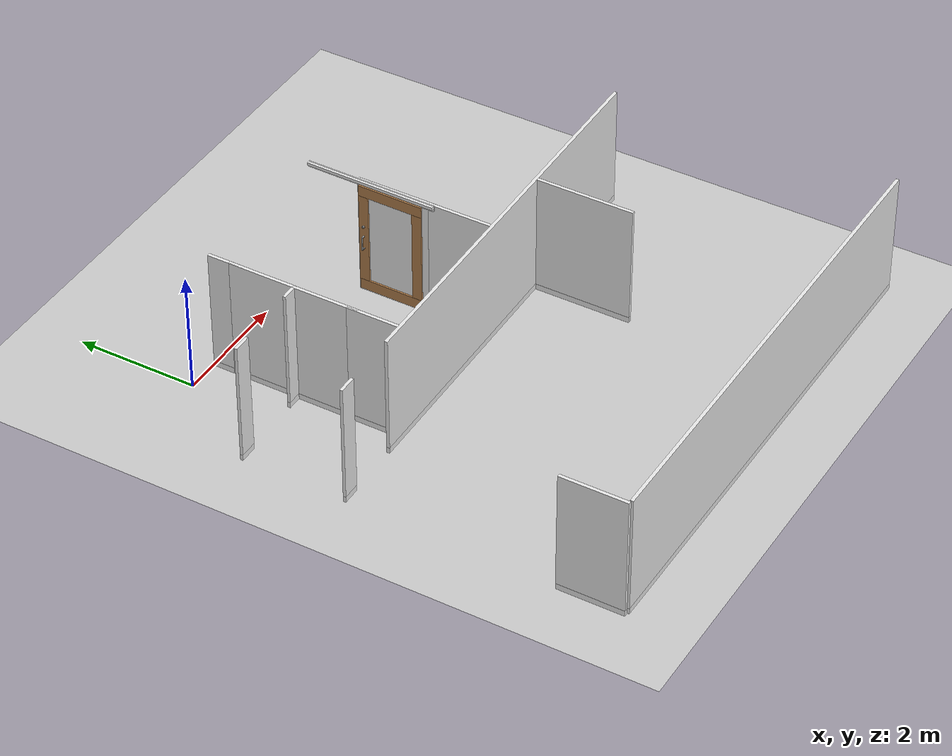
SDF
<sdf version="1.6">
 <world name="default">
  <model name="ground_plane">
   <static>1</static>
   <link name="link">
    <collision name="collision">
     <geometry><plane><normal>0 0 1</normal><size>100 100</size></plane></geometry>
     <surface><friction><ode><mu>100</mu><mu2>50</mu2></ode></friction></surface>
    </collision>
    <visual name="visual">
     <cast_shadows>0</cast_shadows>
     <geometry><plane><normal>0 0 1</normal><size>100 100</size></plane></geometry>
     <material>
      <script><uri>file://media/materials/scripts/gazebo.material</uri><name>Gazebo/Grey</name></script>
     </material>
    </visual>
   </link>
  </model>
  <model name="slim_wall_0_clone">
   <link name="link">
    <pose>-1.21711 0.435553 0 0 -0 0</pose>
    <inertial>
     <mass>12.4167</mass>
     <inertia><ixx>0</ixx><ixy>0</ixy><ixz>0</ixz><iyy>0</iyy><iyz>0</iyz><izz>0</izz></inertia>
    </inertial>
    <velocity_decay><linear>0</linear><angular>0</angular></velocity_decay>
    <visual name="bottom_frame">
     <pose>0 0 0.05 0 -0 0</pose>
     <geometry><box><size>0.048855 0.300624 0.1</size></box></geometry>
     <material>
      <script><uri>model://base_materials/color/scripts</uri><name>hsr_color/white</name></script>
      <ambient>1 1 1 1</ambient>
      <diffuse>0.5 0.5 0.5 1</diffuse>
      <specular>0 0 0 1</specular>
      <emissive>0 0 0 1</emissive>
     </material>
    </visual>
    <visual name="wall">
     <pose>0 0 1.095 0 -0 0</pose>
     <geometry><box><size>0.048855 0.300624 1.99</size></box></geometry>
     <material>
      <script>
       <uri>model://base_materials/wall/scripts</uri>
       <uri>model://base_materials/wall/textures</uri>
       <name>wall/white_noise</name>
      </script>
      <ambient>1 1 1 1</ambient>
      <diffuse>0.5 0.5 0.5 1</diffuse>
      <specular>0 0 0 1</specular>
      <emissive>0 0 0 1</emissive>
     </material>
    </visual>
    <collision name="collision_bottom_frame">
     <pose>0 0 0.05 0 -0 0</pose>
     <geometry><box><size>0.048855 0.300624 0.1</size></box></geometry>
     <surface>
      <friction>
       <ode><mu>1</mu><mu2>1</mu2><fdir1>0 0 0</fdir1><slip1>0</slip1><slip2>0</slip2></ode>
       <torsional>
        <coefficient>1</coefficient>
        <patch_radius>0</patch_radius>
        <surface_radius>0</surface_radius>
        <use_patch_radius>1</use_patch_radius>
        <ode><slip>0</slip></ode>
       </torsional>
      </friction>
      <bounce><restitution_coefficient>0</restitution_coefficient><threshold>1e+06</threshold></bounce>
      <contact>
       <collide_without_contact>0</collide_without_contact>
       <collide_without_contact_bitmask>1</collide_without_contact_bitmask>
       <collide_bitmask>1</collide_bitmask>
       <ode>
        <soft_cfm>0</soft_cfm>
        <soft_erp>0.2</soft_erp>
        <kp>1e+13</kp>
        <kd>1</kd>
        <max_vel>0.01</max_vel>
        <min_depth>0</min_depth>
       </ode>
       <bullet>
        <split_impulse>1</split_impulse>
        <split_impulse_penetration_threshold>-0.01</split_impulse_penetration_threshold>
        <soft_cfm>0</soft_cfm>
        <soft_erp>0.2</soft_erp>
        <kp>1e+13</kp>
        <kd>1</kd>
       </bullet>
      </contact>
     </surface>
    </collision>
    <collision name="collision_wall">
     <pose>0 0 1.095 0 -0 0</pose>
     <geometry><box><size>0.048855 0.300624 1.99</size></box></geometry>
     <surface>
      <friction>
       <ode><mu>1</mu><mu2>1</mu2><fdir1>0 0 0</fdir1><slip1>0</slip1><slip2>0</slip2></ode>
       <torsional>
        <coefficient>1</coefficient>
        <patch_radius>0</patch_radius>
        <surface_radius>0</surface_radius>
        <use_patch_radius>1</use_patch_radius>
        <ode><slip>0</slip></ode>
       </torsional>
      </friction>
      <bounce><restitution_coefficient>0</restitution_coefficient><threshold>1e+06</threshold></bounce>
      <contact>
       <collide_without_contact>0</collide_without_contact>
       <collide_without_contact_bitmask>1</collide_without_contact_bitmask>
       <collide_bitmask>1</collide_bitmask>
       <ode>
        <soft_cfm>0</soft_cfm>
        <soft_erp>0.2</soft_erp>
        <kp>1e+13</kp>
        <kd>1</kd>
        <max_vel>0.01</max_vel>
        <min_depth>0</min_depth>
       </ode>
       <bullet>
        <split_impulse>1</split_impulse>
        <split_impulse_penetration_threshold>-0.01</split_impulse_penetration_threshold>
        <soft_cfm>0</soft_cfm>
        <soft_erp>0.2</soft_erp>
        <kp>1e+13</kp>
        <kd>1</kd>
       </bullet>
      </contact>
     </surface>
    </collision>
   </link>
   <static>1</static>
   <pose>-0.462537 -2.07643 0 0 -0 1.58512</pose>
  </model>
  <model name="slim_wall_0_clone_0">
   <link name="link">
    <pose>-1.21711 0.435553 0 0 -0 0</pose>
    <inertial>
     <mass>12.4167</mass>
     <inertia><ixx>0</ixx><ixy>0</ixy><ixz>0</ixz><iyy>0</iyy><iyz>0</iyz><izz>0</izz></inertia>
    </inertial>
    <velocity_decay><linear>0</linear><angular>0</angular></velocity_decay>
    <visual name="bottom_frame">
     <pose>0 0 0.05 0 -0 0</pose>
     <geometry><box><size>0.048855 0.300624 0.1</size></box></geometry>
     <material>
      <script><uri>model://base_materials/color/scripts</uri><name>hsr_color/white</name></script>
      <ambient>1 1 1 1</ambient>
      <diffuse>0.5 0.5 0.5 1</diffuse>
      <specular>0 0 0 1</specular>
      <emissive>0 0 0 1</emissive>
     </material>
    </visual>
    <visual name="wall">
     <pose>0 0 1.095 0 -0 0</pose>
     <geometry><box><size>0.048855 0.300624 1.99</size></box></geometry>
     <material>
      <script>
       <uri>model://base_materials/wall/scripts</uri>
       <uri>model://base_materials/wall/textures</uri>
       <name>wall/white_noise</name>
      </script>
      <ambient>1 1 1 1</ambient>
      <diffuse>0.5 0.5 0.5 1</diffuse>
      <specular>0 0 0 1</specular>
      <emissive>0 0 0 1</emissive>
     </material>
    </visual>
    <collision name="collision_bottom_frame">
     <pose>0 0 0.05 0 -0 0</pose>
     <geometry><box><size>0.048855 0.300624 0.1</size></box></geometry>
     <surface>
      <friction>
       <ode><mu>1</mu><mu2>1</mu2><fdir1>0 0 0</fdir1><slip1>0</slip1><slip2>0</slip2></ode>
       <torsional>
        <coefficient>1</coefficient>
        <patch_radius>0</patch_radius>
        <surface_radius>0</surface_radius>
        <use_patch_radius>1</use_patch_radius>
        <ode><slip>0</slip></ode>
       </torsional>
      </friction>
      <bounce><restitution_coefficient>0</restitution_coefficient><threshold>1e+06</threshold></bounce>
      <contact>
       <collide_without_contact>0</collide_without_contact>
       <collide_without_contact_bitmask>1</collide_without_contact_bitmask>
       <collide_bitmask>1</collide_bitmask>
       <ode>
        <soft_cfm>0</soft_cfm>
        <soft_erp>0.2</soft_erp>
        <kp>1e+13</kp>
        <kd>1</kd>
        <max_vel>0.01</max_vel>
        <min_depth>0</min_depth>
       </ode>
       <bullet>
        <split_impulse>1</split_impulse>
        <split_impulse_penetration_threshold>-0.01</split_impulse_penetration_threshold>
        <soft_cfm>0</soft_cfm>
        <soft_erp>0.2</soft_erp>
        <kp>1e+13</kp>
        <kd>1</kd>
       </bullet>
      </contact>
     </surface>
    </collision>
    <collision name="collision_wall">
     <pose>0 0 1.095 0 -0 0</pose>
     <geometry><box><size>0.048855 0.300624 1.99</size></box></geometry>
     <surface>
      <friction>
       <ode><mu>1</mu><mu2>1</mu2><fdir1>0 0 0</fdir1><slip1>0</slip1><slip2>0</slip2></ode>
       <torsional>
        <coefficient>1</coefficient>
        <patch_radius>0</patch_radius>
        <surface_radius>0</surface_radius>
        <use_patch_radius>1</use_patch_radius>
        <ode><slip>0</slip></ode>
       </torsional>
      </friction>
      <bounce><restitution_coefficient>0</restitution_coefficient><threshold>1e+06</threshold></bounce>
      <contact>
       <collide_without_contact>0</collide_without_contact>
       <collide_without_contact_bitmask>1</collide_without_contact_bitmask>
       <collide_bitmask>1</collide_bitmask>
       <ode>
        <soft_cfm>0</soft_cfm>
        <soft_erp>0.2</soft_erp>
        <kp>1e+13</kp>
        <kd>1</kd>
        <max_vel>0.01</max_vel>
        <min_depth>0</min_depth>
       </ode>
       <bullet>
        <split_impulse>1</split_impulse>
        <split_impulse_penetration_threshold>-0.01</split_impulse_penetration_threshold>
        <soft_cfm>0</soft_cfm>
        <soft_erp>0.2</soft_erp>
        <kp>1e+13</kp>
        <kd>1</kd>
       </bullet>
      </contact>
     </surface>
    </collision>
   </link>
   <static>1</static>
   <pose>-0.45174 -0.316156 0 0 -0 1.58512</pose>
  </model>
  <model name="slim_wall_0_clone_2">
   <link name="link">
    <pose>-1.21711 0.435553 0 0 -0 0</pose>
    <inertial>
     <mass>12.4167</mass>
     <inertia><ixx>0</ixx><ixy>0</ixy><ixz>0</ixz><iyy>0</iyy><iyz>0</iyz><izz>0</izz></inertia>
    </inertial>
    <velocity_decay><linear>0</linear><angular>0</angular></velocity_decay>
    <visual name="bottom_frame">
     <pose>0 0 0.05 0 -0 0</pose>
     <geometry><box><size>0.048855 0.300624 0.1</size></box></geometry>
     <material>
      <script><uri>model://base_materials/color/scripts</uri><name>hsr_color/white</name></script>
      <ambient>1 1 1 1</ambient>
      <diffuse>0.5 0.5 0.5 1</diffuse>
      <specular>0 0 0 1</specular>
      <emissive>0 0 0 1</emissive>
     </material>
    </visual>
    <visual name="wall">
     <pose>0 0 1.095 0 -0 0</pose>
     <geometry><box><size>0.048855 0.300624 1.99</size></box></geometry>
     <material>
      <script>
       <uri>model://base_materials/wall/scripts</uri>
       <uri>model://base_materials/wall/textures</uri>
       <name>wall/white_noise</name>
      </script>
      <ambient>1 1 1 1</ambient>
      <diffuse>0.5 0.5 0.5 1</diffuse>
      <specular>0 0 0 1</specular>
      <emissive>0 0 0 1</emissive>
     </material>
    </visual>
    <collision name="collision_bottom_frame">
     <pose>0 0 0.05 0 -0 0</pose>
     <geometry><box><size>0.048855 0.300624 0.1</size></box></geometry>
     <surface>
      <friction>
       <ode><mu>1</mu><mu2>1</mu2><fdir1>0 0 0</fdir1><slip1>0</slip1><slip2>0</slip2></ode>
       <torsional>
        <coefficient>1</coefficient>
        <patch_radius>0</patch_radius>
        <surface_radius>0</surface_radius>
        <use_patch_radius>1</use_patch_radius>
        <ode><slip>0</slip></ode>
       </torsional>
      </friction>
      <bounce><restitution_coefficient>0</restitution_coefficient><threshold>1e+06</threshold></bounce>
      <contact>
       <collide_without_contact>0</collide_without_contact>
       <collide_without_contact_bitmask>1</collide_without_contact_bitmask>
       <collide_bitmask>1</collide_bitmask>
       <ode>
        <soft_cfm>0</soft_cfm>
        <soft_erp>0.2</soft_erp>
        <kp>1e+13</kp>
        <kd>1</kd>
        <max_vel>0.01</max_vel>
        <min_depth>0</min_depth>
       </ode>
       <bullet>
        <split_impulse>1</split_impulse>
        <split_impulse_penetration_threshold>-0.01</split_impulse_penetration_threshold>
        <soft_cfm>0</soft_cfm>
        <soft_erp>0.2</soft_erp>
        <kp>1e+13</kp>
        <kd>1</kd>
       </bullet>
      </contact>
     </surface>
    </collision>
    <collision name="collision_wall">
     <pose>0 0 1.095 0 -0 0</pose>
     <geometry><box><size>0.048855 0.300624 1.99</size></box></geometry>
     <surface>
      <friction>
       <ode><mu>1</mu><mu2>1</mu2><fdir1>0 0 0</fdir1><slip1>0</slip1><slip2>0</slip2></ode>
       <torsional>
        <coefficient>1</coefficient>
        <patch_radius>0</patch_radius>
        <surface_radius>0</surface_radius>
        <use_patch_radius>1</use_patch_radius>
        <ode><slip>0</slip></ode>
       </torsional>
      </friction>
      <bounce><restitution_coefficient>0</restitution_coefficient><threshold>1e+06</threshold></bounce>
      <contact>
       <collide_without_contact>0</collide_without_contact>
       <collide_without_contact_bitmask>1</collide_without_contact_bitmask>
       <collide_bitmask>1</collide_bitmask>
       <ode>
        <soft_cfm>0</soft_cfm>
        <soft_erp>0.2</soft_erp>
        <kp>1e+13</kp>
        <kd>1</kd>
        <max_vel>0.01</max_vel>
        <min_depth>0</min_depth>
       </ode>
       <bullet>
        <split_impulse>1</split_impulse>
        <split_impulse_penetration_threshold>-0.01</split_impulse_penetration_threshold>
        <soft_cfm>0</soft_cfm>
        <soft_erp>0.2</soft_erp>
        <kp>1e+13</kp>
        <kd>1</kd>
       </bullet>
      </contact>
     </surface>
    </collision>
   </link>
   <static>1</static>
   <pose>0.874173 -0.274906 0 0 -0 1.58512</pose>
  </model>
  <model name="full_wall_55_1100_2090_0">
   <link name="link">
    <inertial>
     <mass>50</mass>
     <inertia><ixx>1</ixx><ixy>0</ixy><ixz>0</ixz><iyy>1</iyy><iyz>0</iyz><izz>1</izz></inertia>
    </inertial>
    <visual name="bottom_frame">
     <pose>0 0 0.05 0 -0 0</pose>
     <geometry><box><size>0.055 1.1 0.1</size></box></geometry>
     <material>
      <script><uri>model://base_materials/color/scripts</uri><name>hsr_color/white</name></script>
     </material>
    </visual>
    <collision name="collision_bottom_frame">
     <pose>0 0 0.05 0 -0 0</pose>
     <geometry><box><size>0.055 1.1 0.1</size></box></geometry>
    </collision>
    <visual name="wall">
     <pose>0 0 1.095 0 -0 0</pose>
     <geometry><box><size>0.055 1.1 1.99</size></box></geometry>
     <material>
      <script>
       <uri>model://base_materials/wall/scripts</uri>
       <uri>model://base_materials/wall/textures</uri>
       <name>wall/white_noise</name>
      </script>
     </material>
    </visual>
    <collision name="collision_wall">
     <pose>0 0 1.095 0 -0 0</pose>
     <geometry><box><size>0.055 1.1 1.99</size></box></geometry>
    </collision>
    <velocity_decay><linear>0</linear><angular>0</angular></velocity_decay>
   </link>
   <static>1</static>
   <pose>0.574353 -2.02901 0 0 -0 0</pose>
  </model>
  <model name="full_wall_55_1100_2090_1">
   <link name="link">
    <inertial>
     <mass>50</mass>
     <inertia><ixx>1</ixx><ixy>0</ixy><ixz>0</ixz><iyy>1</iyy><iyz>0</iyz><izz>1</izz></inertia>
    </inertial>
    <visual name="bottom_frame">
     <pose>0 0 0.05 0 -0 0</pose>
     <geometry><box><size>0.055 1.1 0.1</size></box></geometry>
     <material>
      <script><uri>model://base_materials/color/scripts</uri><name>hsr_color/white</name></script>
     </material>
    </visual>
    <collision name="collision_bottom_frame">
     <pose>0 0 0.05 0 -0 0</pose>
     <geometry><box><size>0.055 1.1 0.1</size></box></geometry>
    </collision>
    <visual name="wall">
     <pose>0 0 1.095 0 -0 0</pose>
     <geometry><box><size>0.055 1.1 1.99</size></box></geometry>
     <material>
      <script>
       <uri>model://base_materials/wall/scripts</uri>
       <uri>model://base_materials/wall/textures</uri>
       <name>wall/white_noise</name>
      </script>
     </material>
    </visual>
    <collision name="collision_wall">
     <pose>0 0 1.095 0 -0 0</pose>
     <geometry><box><size>0.055 1.1 1.99</size></box></geometry>
    </collision>
    <velocity_decay><linear>0</linear><angular>0</angular></velocity_decay>
   </link>
   <static>1</static>
   <pose>0.578006 -0.931267 0 0 -0 0</pose>
  </model>
  <model name="full_wall_55_600_2090">
   <link name="link">
    <inertial>
     <mass>50</mass>
     <inertia><ixx>1</ixx><ixy>0</ixy><ixz>0</ixz><iyy>1</iyy><iyz>0</iyz><izz>1</izz></inertia>
    </inertial>
    <visual name="bottom_frame">
     <pose>0 0 0.05 0 -0 0</pose>
     <geometry><box><size>0.055 0.6 0.1</size></box></geometry>
     <material>
      <script><uri>model://base_materials/color/scripts</uri><name>hsr_color/white</name></script>
     </material>
    </visual>
    <collision name="collision_bottom_frame">
     <pose>0 0 0.05 0 -0 0</pose>
     <geometry><box><size>0.055 0.6 0.1</size></box></geometry>
    </collision>
    <visual name="wall">
     <pose>0 0 1.095 0 -0 0</pose>
     <geometry><box><size>0.055 0.6 1.99</size></box></geometry>
     <material>
      <script>
       <uri>model://base_materials/wall/scripts</uri>
       <uri>model://base_materials/wall/textures</uri>
       <name>wall/white_noise</name>
      </script>
     </material>
    </visual>
    <collision name="collision_wall">
     <pose>0 0 1.095 0 -0 0</pose>
     <geometry><box><size>0.055 0.6 1.99</size></box></geometry>
    </collision>
    <velocity_decay><linear>0</linear><angular>0</angular></velocity_decay>
   </link>
   <static>1</static>
   <pose>0.5806 -0.313776 0 0 -0 0</pose>
  </model>
  <model name="full_wall_55_900_2090_0">
   <link name="link">
    <inertial>
     <mass>50</mass>
     <inertia><ixx>1</ixx><ixy>0</ixy><ixz>0</ixz><iyy>1</iyy><iyz>0</iyz><izz>1</izz></inertia>
    </inertial>
    <visual name="bottom_frame">
     <pose>0 0 0.05 0 -0 0</pose>
     <geometry><box><size>0.055 0.9 0.1</size></box></geometry>
     <material>
      <script><uri>model://base_materials/color/scripts</uri><name>hsr_color/white</name></script>
     </material>
    </visual>
    <collision name="collision_bottom_frame">
     <pose>0 0 0.05 0 -0 0</pose>
     <geometry><box><size>0.055 0.9 0.1</size></box></geometry>
    </collision>
    <visual name="wall">
     <pose>0 0 1.095 0 -0 0</pose>
     <geometry><box><size>0.055 0.9 1.99</size></box></geometry>
     <material>
      <script>
       <uri>model://base_materials/wall/scripts</uri>
       <uri>model://base_materials/wall/textures</uri>
       <name>wall/white_noise</name>
      </script>
     </material>
    </visual>
    <collision name="collision_wall">
     <pose>0 0 1.095 0 -0 0</pose>
     <geometry><box><size>0.055 0.9 1.99</size></box></geometry>
    </collision>
    <velocity_decay><linear>0</linear><angular>0</angular></velocity_decay>
   </link>
   <static>1</static>
   <pose>0.573697 -2.84416 0 0 -0 0</pose>
  </model>
  <model name="full_wall_55_1100_2090_2">
   <link name="link">
    <inertial>
     <mass>50</mass>
     <inertia><ixx>1</ixx><ixy>0</ixy><ixz>0</ixz><iyy>1</iyy><iyz>0</iyz><izz>1</izz></inertia>
    </inertial>
    <visual name="bottom_frame">
     <pose>0 0 0.05 0 -0 0</pose>
     <geometry><box><size>0.055 1.1 0.1</size></box></geometry>
     <material>
      <script><uri>model://base_materials/color/scripts</uri><name>hsr_color/white</name></script>
     </material>
    </visual>
    <collision name="collision_bottom_frame">
     <pose>0 0 0.05 0 -0 0</pose>
     <geometry><box><size>0.055 1.1 0.1</size></box></geometry>
    </collision>
    <visual name="wall">
     <pose>0 0 1.095 0 -0 0</pose>
     <geometry><box><size>0.055 1.1 1.99</size></box></geometry>
     <material>
      <script>
       <uri>model://base_materials/wall/scripts</uri>
       <uri>model://base_materials/wall/textures</uri>
       <name>wall/white_noise</name>
      </script>
     </material>
    </visual>
    <collision name="collision_wall">
     <pose>0 0 1.095 0 -0 0</pose>
     <geometry><box><size>0.055 1.1 1.99</size></box></geometry>
    </collision>
    <velocity_decay><linear>0</linear><angular>0</angular></velocity_decay>
   </link>
   <static>1</static>
   <pose>3.27026 -1.45916 -0.016667 0 -0 2e-06</pose>
  </model>
  <model name="full_wall_55_1100_2090_2_clone">
   <link name="link">
    <inertial>
     <mass>50</mass>
     <inertia><ixx>1</ixx><ixy>0</ixy><ixz>0</ixz><iyy>1</iyy><iyz>0</iyz><izz>1</izz></inertia>
    </inertial>
    <visual name="bottom_frame">
     <pose>0 0 0.05 0 -0 0</pose>
     <geometry><box><size>0.055 1.1 0.1</size></box></geometry>
     <material>
      <script><uri>model://base_materials/color/scripts</uri><name>hsr_color/white</name></script>
     </material>
    </visual>
    <collision name="collision_bottom_frame">
     <pose>0 0 0.05 0 -0 0</pose>
     <geometry><box><size>0.055 1.1 0.1</size></box></geometry>
    </collision>
    <visual name="wall">
     <pose>0 0 1.095 0 -0 0</pose>
     <geometry><box><size>0.055 1.1 1.99</size></box></geometry>
     <material>
      <script>
       <uri>model://base_materials/wall/scripts</uri>
       <uri>model://base_materials/wall/textures</uri>
       <name>wall/white_noise</name>
      </script>
     </material>
    </visual>
    <collision name="collision_wall">
     <pose>0 0 1.095 0 -0 0</pose>
     <geometry><box><size>0.055 1.1 1.99</size></box></geometry>
    </collision>
    <velocity_decay><linear>0</linear><angular>0</angular></velocity_decay>
   </link>
   <static>1</static>
   <pose>3.27086 -1.69063 -0.016667 0 -0 2e-06</pose>
  </model>
  <model name="full_wall_55_1100_2090_2_clone_clone">
   <link name="link">
    <inertial>
     <mass>50</mass>
     <inertia><ixx>1</ixx><ixy>0</ixy><ixz>0</ixz><iyy>1</iyy><iyz>0</iyz><izz>1</izz></inertia>
    </inertial>
    <visual name="bottom_frame">
     <pose>0 0 0.05 0 -0 0</pose>
     <geometry><box><size>0.055 1.1 0.1</size></box></geometry>
     <material>
      <script><uri>model://base_materials/color/scripts</uri><name>hsr_color/white</name></script>
     </material>
    </visual>
    <collision name="collision_bottom_frame">
     <pose>0 0 0.05 0 -0 0</pose>
     <geometry><box><size>0.055 1.1 0.1</size></box></geometry>
    </collision>
    <visual name="wall">
     <pose>0 0 1.095 0 -0 0</pose>
     <geometry><box><size>0.055 1.1 1.99</size></box></geometry>
     <material>
      <script>
       <uri>model://base_materials/wall/scripts</uri>
       <uri>model://base_materials/wall/textures</uri>
       <name>wall/white_noise</name>
      </script>
     </material>
    </visual>
    <collision name="collision_wall">
     <pose>0 0 1.095 0 -0 0</pose>
     <geometry><box><size>0.055 1.1 1.99</size></box></geometry>
    </collision>
    <velocity_decay><linear>0</linear><angular>0</angular></velocity_decay>
   </link>
   <static>1</static>
   <pose>3.26847 -2.69166 -0.016667 0 -0 2e-06</pose>
  </model>
  <model name="full_wall_55_1100_2090_5_clone">
   <link name="link">
    <inertial>
     <mass>50</mass>
     <inertia><ixx>1</ixx><ixy>0</ixy><ixz>0</ixz><iyy>1</iyy><iyz>0</iyz><izz>1</izz></inertia>
    </inertial>
    <visual name="bottom_frame">
     <pose>0 0 0.05 0 -0 0</pose>
     <geometry><box><size>0.055 1.1 0.1</size></box></geometry>
     <material>
      <script><uri>model://base_materials/color/scripts</uri><name>hsr_color/white</name></script>
     </material>
    </visual>
    <collision name="collision_bottom_frame">
     <pose>0 0 0.05 0 -0 0</pose>
     <geometry><box><size>0.055 1.1 0.1</size></box></geometry>
    </collision>
    <visual name="wall">
     <pose>0 0 1.095 0 -0 0</pose>
     <geometry><box><size>0.055 1.1 1.99</size></box></geometry>
     <material>
      <script>
       <uri>model://base_materials/wall/scripts</uri>
       <uri>model://base_materials/wall/textures</uri>
       <name>wall/white_noise</name>
      </script>
     </material>
    </visual>
    <collision name="collision_wall">
     <pose>0 0 1.095 0 -0 0</pose>
     <geometry><box><size>0.055 1.1 1.99</size></box></geometry>
    </collision>
    <velocity_decay><linear>0</linear><angular>0</angular></velocity_decay>
   </link>
   <static>1</static>
   <pose>-1.04004 -7.3157 0 0 -0 0</pose>
  </model>
  <model name="full_wall_55_8295_2090_0_clone">
   <link name="link">
    <inertial>
     <mass>50</mass>
     <inertia><ixx>1</ixx><ixy>0</ixy><ixz>0</ixz><iyy>1</iyy><iyz>0</iyz><izz>1</izz></inertia>
    </inertial>
    <visual name="bottom_frame">
     <pose>0 0 0.05 0 -0 0</pose>
     <geometry><box><size>0.055 8.295 0.1</size></box></geometry>
     <material>
      <script><uri>model://base_materials/color/scripts</uri><name>hsr_color/white</name></script>
     </material>
    </visual>
    <collision name="collision_bottom_frame">
     <pose>0 0 0.05 0 -0 0</pose>
     <geometry><box><size>0.055 8.295 0.1</size></box></geometry>
    </collision>
    <visual name="wall">
     <pose>0 0 1.095 0 -0 0</pose>
     <geometry><box><size>0.055 8.295 1.99</size></box></geometry>
     <material>
      <script>
       <uri>model://base_materials/wall/scripts</uri>
       <uri>model://base_materials/wall/textures</uri>
       <name>wall/white_noise</name>
      </script>
     </material>
    </visual>
    <collision name="collision_wall">
     <pose>0 0 1.095 0 -0 0</pose>
     <geometry><box><size>0.055 8.295 1.99</size></box></geometry>
    </collision>
    <velocity_decay><linear>0</linear><angular>0</angular></velocity_decay>
   </link>
   <static>1</static>
   <pose>3.15079 -7.88187 0 0 0 -1.57394</pose>
  </model>
  <model name="full_wall_outside/home">
   <link name="link">
    <pose>0 -0.134922 0 0 -0 0</pose>
    <inertial>
     <mass>41.9092</mass>
     <inertia><ixx>182.656</ixx><ixy>0</ixy><ixz>0</ixz><iyy>13.8409</iyy><iyz>0</iyz><izz>168.836</izz></inertia>
    </inertial>
    <velocity_decay><linear>0</linear><angular>0</angular></velocity_decay>
    <visual name="bottom_frame">
     <pose>0 0 0.05 0 -0 0</pose>
     <geometry><box><size>0.055 6.95272 0.1</size></box></geometry>
     <material>
      <script><uri>model://base_materials/color/scripts</uri><name>hsr_color/white</name></script>
      <ambient>1 1 1 1</ambient>
      <diffuse>0.5 0.5 0.5 1</diffuse>
      <specular>0 0 0 1</specular>
      <emissive>0 0 0 1</emissive>
     </material>
    </visual>
    <visual name="wall">
     <pose>0 0 1.095 0 -0 0</pose>
     <geometry><box><size>0.055 6.95272 1.99</size></box></geometry>
     <material>
      <script>
       <uri>model://base_materials/wall/scripts</uri>
       <uri>model://base_materials/wall/textures</uri>
       <name>wall/white_noise</name>
      </script>
      <ambient>1 1 1 1</ambient>
      <diffuse>0.5 0.5 0.5 1</diffuse>
      <specular>0 0 0 1</specular>
      <emissive>0 0 0 1</emissive>
     </material>
    </visual>
    <collision name="collision_bottom_frame">
     <pose>0 0 0.05 0 -0 0</pose>
     <geometry><box><size>0.055 6.95272 0.1</size></box></geometry>
     <surface>
      <friction>
       <ode><mu>1</mu><mu2>1</mu2><fdir1>0 0 0</fdir1><slip1>0</slip1><slip2>0</slip2></ode>
       <torsional>
        <coefficient>1</coefficient>
        <patch_radius>0</patch_radius>
        <surface_radius>0</surface_radius>
        <use_patch_radius>1</use_patch_radius>
        <ode><slip>0</slip></ode>
       </torsional>
      </friction>
      <bounce><restitution_coefficient>0</restitution_coefficient><threshold>1e+06</threshold></bounce>
      <contact>
       <collide_without_contact>0</collide_without_contact>
       <collide_without_contact_bitmask>1</collide_without_contact_bitmask>
       <collide_bitmask>1</collide_bitmask>
       <ode>
        <soft_cfm>0</soft_cfm>
        <soft_erp>0.2</soft_erp>
        <kp>1e+13</kp>
        <kd>1</kd>
        <max_vel>0.01</max_vel>
        <min_depth>0</min_depth>
       </ode>
       <bullet>
        <split_impulse>1</split_impulse>
        <split_impulse_penetration_threshold>-0.01</split_impulse_penetration_threshold>
        <soft_cfm>0</soft_cfm>
        <soft_erp>0.2</soft_erp>
        <kp>1e+13</kp>
        <kd>1</kd>
       </bullet>
      </contact>
     </surface>
    </collision>
    <collision name="collision_wall">
     <pose>0 0 1.095 0 -0 0</pose>
     <geometry><box><size>0.055 6.95272 1.99</size></box></geometry>
     <surface>
      <friction>
       <ode><mu>1</mu><mu2>1</mu2><fdir1>0 0 0</fdir1><slip1>0</slip1><slip2>0</slip2></ode>
       <torsional>
        <coefficient>1</coefficient>
        <patch_radius>0</patch_radius>
        <surface_radius>0</surface_radius>
        <use_patch_radius>1</use_patch_radius>
        <ode><slip>0</slip></ode>
       </torsional>
      </friction>
      <bounce><restitution_coefficient>0</restitution_coefficient><threshold>1e+06</threshold></bounce>
      <contact>
       <collide_without_contact>0</collide_without_contact>
       <collide_without_contact_bitmask>1</collide_without_contact_bitmask>
       <collide_bitmask>1</collide_bitmask>
       <ode>
        <soft_cfm>0</soft_cfm>
        <soft_erp>0.2</soft_erp>
        <kp>1e+13</kp>
        <kd>1</kd>
        <max_vel>0.01</max_vel>
        <min_depth>0</min_depth>
       </ode>
       <bullet>
        <split_impulse>1</split_impulse>
        <split_impulse_penetration_threshold>-0.01</split_impulse_penetration_threshold>
        <soft_cfm>0</soft_cfm>
        <soft_erp>0.2</soft_erp>
        <kp>1e+13</kp>
        <kd>1</kd>
       </bullet>
      </contact>
     </surface>
    </collision>
   </link>
   <static>1</static>
   <pose>3.7943 -3.23239 0 0 0 -1.5564</pose>
  </model>
  <model name="full_wall_55_1100_2090_4">
   <link name="link">
    <inertial>
     <mass>74.7603</mass>
     <inertia><ixx>41.5247</ixx><ixy>0</ixy><ixz>0</ixz><iyy>24.6904</iyy><iyz>0</iyz><izz>16.872</izz></inertia>
    </inertial>
    <velocity_decay><linear>0</linear><angular>0</angular></velocity_decay>
    <pose>0 0.257563 0 0 -0 0</pose>
    <visual name="bottom_frame">
     <pose>0 0 0.05 0 -0 0</pose>
     <geometry><box><size>0.055 1.64474 0.1</size></box></geometry>
     <material>
      <script><uri>model://base_materials/color/scripts</uri><name>hsr_color/white</name></script>
     </material>
    </visual>
    <visual name="wall">
     <pose>0 0 1.095 0 -0 0</pose>
     <geometry><box><size>0.055 1.64474 1.99</size></box></geometry>
     <material>
      <script>
       <uri>model://base_materials/wall/scripts</uri>
       <uri>model://base_materials/wall/textures</uri>
       <name>wall/white_noise</name>
      </script>
     </material>
    </visual>
    <collision name="collision_bottom_frame">
     <pose>0 0 0.05 0 -0 0</pose>
     <geometry><box><size>0.055 1.64474 0.1</size></box></geometry>
     <surface>
      <friction>
       <ode><mu>1</mu><mu2>1</mu2><fdir1>0 0 0</fdir1><slip1>0</slip1><slip2>0</slip2></ode>
       <torsional>
        <coefficient>1</coefficient>
        <patch_radius>0</patch_radius>
        <surface_radius>0</surface_radius>
        <use_patch_radius>1</use_patch_radius>
        <ode><slip>0</slip></ode>
       </torsional>
      </friction>
      <bounce><restitution_coefficient>0</restitution_coefficient><threshold>1e+06</threshold></bounce>
      <contact>
       <collide_without_contact>0</collide_without_contact>
       <collide_without_contact_bitmask>1</collide_without_contact_bitmask>
       <collide_bitmask>1</collide_bitmask>
       <ode>
        <soft_cfm>0</soft_cfm>
        <soft_erp>0.2</soft_erp>
        <kp>1e+13</kp>
        <kd>1</kd>
        <max_vel>0.01</max_vel>
        <min_depth>0</min_depth>
       </ode>
       <bullet>
        <split_impulse>1</split_impulse>
        <split_impulse_penetration_threshold>-0.01</split_impulse_penetration_threshold>
        <soft_cfm>0</soft_cfm>
        <soft_erp>0.2</soft_erp>
        <kp>1e+13</kp>
        <kd>1</kd>
       </bullet>
      </contact>
     </surface>
    </collision>
    <collision name="collision_wall">
     <pose>0 0 1.095 0 -0 0</pose>
     <geometry><box><size>0.055 1.64474 1.99</size></box></geometry>
     <surface>
      <friction>
       <ode><mu>1</mu><mu2>1</mu2><fdir1>0 0 0</fdir1><slip1>0</slip1><slip2>0</slip2></ode>
       <torsional>
        <coefficient>1</coefficient>
        <patch_radius>0</patch_radius>
        <surface_radius>0</surface_radius>
        <use_patch_radius>1</use_patch_radius>
        <ode><slip>0</slip></ode>
       </torsional>
      </friction>
      <bounce><restitution_coefficient>0</restitution_coefficient><threshold>1e+06</threshold></bounce>
      <contact>
       <collide_without_contact>0</collide_without_contact>
       <collide_without_contact_bitmask>1</collide_without_contact_bitmask>
       <collide_bitmask>1</collide_bitmask>
       <ode>
        <soft_cfm>0</soft_cfm>
        <soft_erp>0.2</soft_erp>
        <kp>1e+13</kp>
        <kd>1</kd>
        <max_vel>0.01</max_vel>
        <min_depth>0</min_depth>
       </ode>
       <bullet>
        <split_impulse>1</split_impulse>
        <split_impulse_penetration_threshold>-0.01</split_impulse_penetration_threshold>
        <soft_cfm>0</soft_cfm>
        <soft_erp>0.2</soft_erp>
        <kp>1e+13</kp>
        <kd>1</kd>
       </bullet>
      </contact>
     </surface>
    </collision>
   </link>
   <static>1</static>
   <pose>4.58745 -4.30955 0 0 -0 0</pose>
  </model>
  <model name="sliding_door_55_1100_2090">
   <link name="link">
    <inertial>
     <mass>50</mass>
     <inertia><ixx>1</ixx><ixy>0</ixy><ixz>0</ixz><iyy>1</iyy><iyz>0</iyz><izz>1</izz></inertia>
    </inertial>
    <visual name="top_guard">
     <pose>0.0225 0 2.065 0 -0 0</pose>
     <geometry><box><size>0.045 2.2 0.05</size></box></geometry>
     <material>
      <script><uri>model://base_materials/color/scripts</uri><name>hsr_color/white</name></script>
     </material>
    </visual>
    <collision name="collision_top_guard">
     <pose>0.0225 0 2.065 0 -0 0</pose>
     <geometry><box><size>0.045 2.2 0.05</size></box></geometry>
    </collision>
    <visual name="front_guard">
     <pose>0.055 0 2.04 0 -0 0</pose>
     <geometry><box><size>0.02 2.2 0.1</size></box></geometry>
     <material>
      <script><uri>model://base_materials/color/scripts</uri><name>hsr_color/white</name></script>
     </material>
    </visual>
    <collision name="collision_front_guard">
     <pose>0.055 0 2.04 0 -0 0</pose>
     <geometry><box><size>0.02 2.2 0.1</size></box></geometry>
    </collision>
    <visual name="top_frame">
     <pose>0.0225 -0.35 1.9075 0 -0 0</pose>
     <geometry><box><size>0.03 1.1 0.185</size></box></geometry>
     <material>
      <script><uri>model://base_materials/wood/scripts/wood.material</uri><name>base_materials/wood</name></script>
     </material>
    </visual>
    <collision name="collision_top_frame">
     <pose>0.0225 -0.35 1.9075 0 -0 0</pose>
     <geometry><box><size>0.03 1.1 0.185</size></box></geometry>
    </collision>
    <visual name="right_frame">
     <pose>0.0225 0.1175 1.025 0 -0 0</pose>
     <geometry><box><size>0.03 0.165 1.58</size></box></geometry>
     <material>
      <script><uri>model://base_materials/wood/scripts/wood.material</uri><name>base_materials/wood</name></script>
     </material>
    </visual>
    <collision name="collision_right_frame">
     <pose>0.0225 0.1175 1.025 0 -0 0</pose>
     <geometry><box><size>0.03 0.165 1.58</size></box></geometry>
    </collision>
    <visual name="left_frame">
     <pose>0.0225 -0.8175 1.025 0 -0 0</pose>
     <geometry><box><size>0.03 0.165 1.58</size></box></geometry>
     <material>
      <script><uri>model://base_materials/wood/scripts/wood.material</uri><name>base_materials/wood</name></script>
     </material>
    </visual>
    <collision name="collision_left_frame">
     <pose>0.0225 -0.8175 1.025 0 -0 0</pose>
     <geometry><box><size>0.03 0.165 1.58</size></box></geometry>
    </collision>
    <visual name="bottom_frame">
     <pose>0.0225 -0.35 0.1425 0 -0 0</pose>
     <geometry><box><size>0.03 1.1 0.185</size></box></geometry>
     <material>
      <script><uri>model://base_materials/wood/scripts/wood.material</uri><name>base_materials/wood</name></script>
     </material>
    </visual>
    <collision name="collision_bottom_frame">
     <pose>0.0225 -0.35 0.1425 0 -0 0</pose>
     <geometry><box><size>0.03 1.1 0.185</size></box></geometry>
    </collision>
    <visual name="handle_top_frame">
     <pose>0.0225 0.1175 1.0675 3.14159 1.57079 3.14159</pose>
     <geometry><cylinder><radius>0.0125</radius><length>0.125</length></cylinder></geometry>
     <material>
      <script><uri>model://base_materials/color/scripts</uri><name>hsr_color/grey</name></script>
     </material>
    </visual>
    <collision name="collision_handle_top_frame">
     <pose>0.0225 0.1175 1.0675 3.14159 1.57079 3.14159</pose>
     <geometry><cylinder><radius>0.0125</radius><length>0.125</length></cylinder></geometry>
    </collision>
    <visual name="handle_bottom_frame">
     <pose>0.0225 0.1175 0.8425 3.14159 1.57079 3.14159</pose>
     <geometry><cylinder><radius>0.0125</radius><length>0.125</length></cylinder></geometry>
     <material>
      <script><uri>model://base_materials/color/scripts</uri><name>hsr_color/grey</name></script>
     </material>
    </visual>
    <collision name="collision_handle_bottom_frame">
     <pose>0.0225 0.1175 0.8425 3.14159 1.57079 3.14159</pose>
     <geometry><cylinder><radius>0.0125</radius><length>0.125</length></cylinder></geometry>
    </collision>
    <visual name="handle_front_frame">
     <pose>0.085 0.1175 0.955 0 -0 0</pose>
     <geometry><cylinder><radius>0.0125</radius><length>0.225</length></cylinder></geometry>
     <material>
      <script><uri>model://base_materials/color/scripts</uri><name>hsr_color/grey</name></script>
     </material>
    </visual>
    <collision name="collision_handle_front_frame">
     <pose>0.085 0.1175 0.955 0 -0 0</pose>
     <geometry><cylinder><radius>0.0125</radius><length>0.225</length></cylinder></geometry>
    </collision>
    <visual name="handle_back_frame">
     <pose>-0.04 0.1175 0.955 0 -0 0</pose>
     <geometry><cylinder><radius>0.0125</radius><length>0.225</length></cylinder></geometry>
     <material>
      <script><uri>model://base_materials/color/scripts</uri><name>hsr_color/grey</name></script>
     </material>
    </visual>
    <collision name="collision_handle_back_frame">
     <pose>-0.04 0.1175 0.955 0 -0 0</pose>
     <geometry><cylinder><radius>0.0125</radius><length>0.225</length></cylinder></geometry>
    </collision>
    <visual name="handle_front_top_corner">
     <pose>0.085 0.1175 1.0675 0 -0 0</pose>
     <geometry><sphere><radius>0.0125</radius></sphere></geometry>
     <material>
      <script><uri>model://base_materials/color/scripts</uri><name>hsr_color/grey</name></script>
     </material>
    </visual>
    <collision name="collision_handle_front_top_corner">
     <pose>0.085 0.1175 1.0675 0 -0 0</pose>
     <geometry><sphere><radius>0.0125</radius></sphere></geometry>
    </collision>
    <visual name="handle_front_bottom_corner">
     <pose>0.085 0.1175 0.8425 0 -0 0</pose>
     <geometry><sphere><radius>0.0125</radius></sphere></geometry>
     <material>
      <script><uri>model://base_materials/color/scripts</uri><name>hsr_color/grey</name></script>
     </material>
    </visual>
    <collision name="collision_handle_front_bottom_corner">
     <pose>0.085 0.1175 0.8425 0 -0 0</pose>
     <geometry><sphere><radius>0.0125</radius></sphere></geometry>
    </collision>
    <visual name="handle_back_top_corner">
     <pose>-0.04 0.1175 1.0675 0 -0 0</pose>
     <geometry><sphere><radius>0.0125</radius></sphere></geometry>
     <material>
      <script><uri>model://base_materials/color/scripts</uri><name>hsr_color/grey</name></script>
     </material>
    </visual>
    <collision name="collision_handle_back_top_corner">
     <pose>-0.04 0.1175 1.0675 0 -0 0</pose>
     <geometry><sphere><radius>0.0125</radius></sphere></geometry>
    </collision>
    <visual name="handle_back_bottom_corner">
     <pose>-0.04 0.1175 0.8425 0 -0 0</pose>
     <geometry><sphere><radius>0.0125</radius></sphere></geometry>
     <material>
      <script><uri>model://base_materials/color/scripts</uri><name>hsr_color/grey</name></script>
     </material>
    </visual>
    <collision name="collision_handle_back_bottom_corner">
     <pose>-0.04 0.1175 0.8425 0 -0 0</pose>
     <geometry><sphere><radius>0.0125</radius></sphere></geometry>
    </collision>
    <visual name="handle_lock1">
     <pose>0.0225 0.1175 1.25 3.14159 1.57079 3.14159</pose>
     <geometry><cylinder><radius>0.02</radius><length>0.08</length></cylinder></geometry>
     <material>
      <script><uri>model://base_materials/color/scripts</uri><name>hsr_color/grey</name></script>
     </material>
    </visual>
    <collision name="collision_handle_lock1">
     <pose>0.0225 0.1175 1.25 3.14159 1.57079 3.14159</pose>
     <geometry><cylinder><radius>0.02</radius><length>0.08</length></cylinder></geometry>
    </collision>
    <visual name="handle_lock2">
     <pose>0.0225 0.1175 1.25 3.14159 1.57079 3.14159</pose>
     <geometry><cylinder><radius>0.015</radius><length>0.09</length></cylinder></geometry>
     <material>
      <script><uri>model://base_materials/color/scripts</uri><name>hsr_color/grey</name></script>
     </material>
    </visual>
    <collision name="collision_handle_lock2">
     <pose>0.0225 0.1175 1.25 3.14159 1.57079 3.14159</pose>
     <geometry><cylinder><radius>0.015</radius><length>0.09</length></cylinder></geometry>
    </collision>
    <velocity_decay><linear>0</linear><angular>0</angular></velocity_decay>
   </link>
   <static>1</static>
   <pose>3.17837 -1.15248 0 0 0 -0.008663</pose>
  </model>
 </world>
</sdf>
